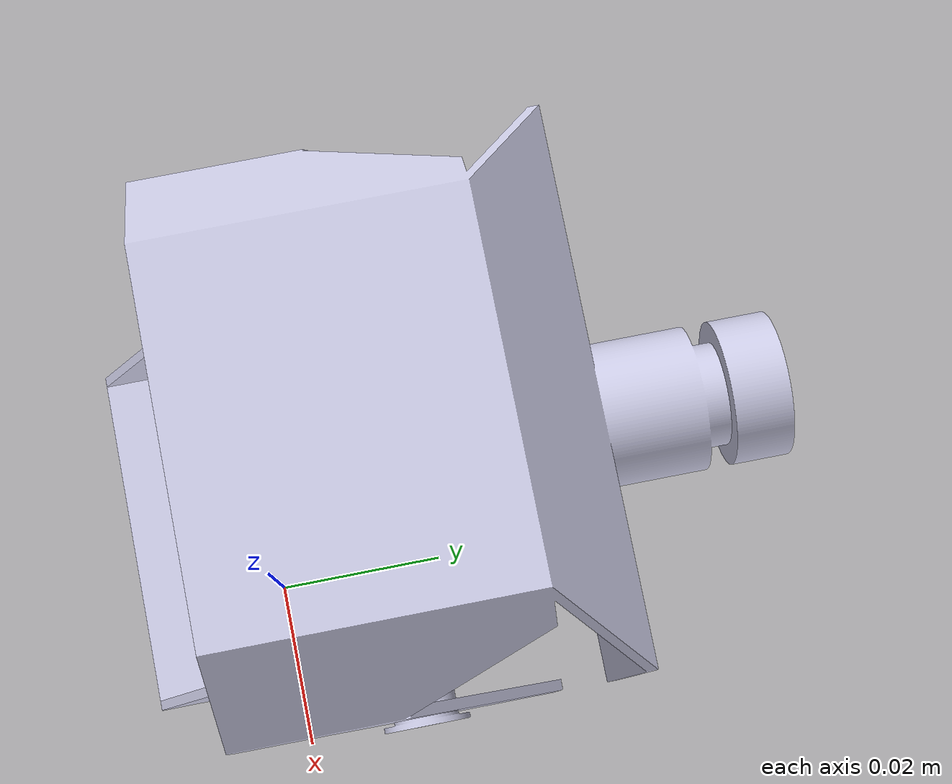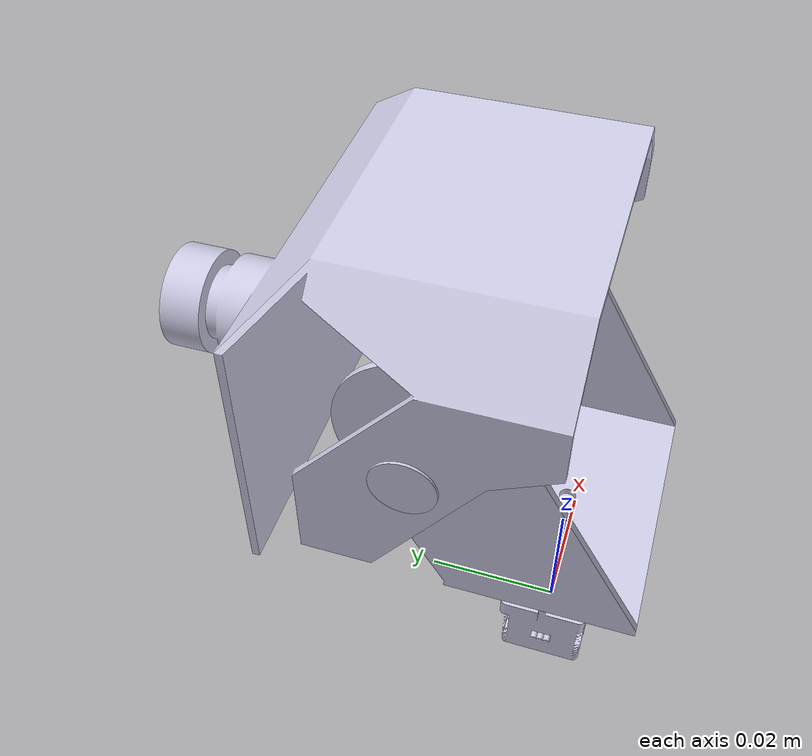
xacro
<?xml version="1.0" ?>
<robot name="Robot">
  <!--Generated by CROSS, a ROS Workbench for FreeCAD (https://github.com/galou/freecad.cross)-->
  <link name="base_link">
    <inertial>
      <mass value="0.1"/>
      <origin xyz="0.0 0.0 0.0" rpy="0.0 -0.0 0.0"/>
      <inertia ixx="0.01" ixy="0.0" ixz="0.0" iyy="0.01" iyz="0.0" izz="0.0"/>
    </inertial>
  </link>
  <link name="servo">
    <visual>
      <!--servo002-->
      <origin xyz="-0.0235 0.0119 0.0176" rpy="0.0 -0.0 0.0"/>
      <geometry>
        <mesh filename="package://yahboom_camera_controller/meshes/Camera_servo002.dae"/>
      </geometry>
    </visual>
    <collision>
      <!--servo002_bbox-->
      <origin xyz="0.00016 -0.00035 0.014855" rpy="0.0 -0.0 0.0"/>
      <geometry>
        <box size="0.03210000000000001 0.012400000000002187 0.02995"/>
      </geometry>
    </collision>
    <inertial>
      <mass value="0.009000000000000001"/>
      <origin xyz="0.0 0.0 0.0" rpy="0.0 -0.0 0.0"/>
      <inertia ixx="0.02" ixy="0.0" ixz="0.0" iyy="0.01" iyz="0.0" izz="0.02"/>
    </inertial>
  </link>
  <link name="servo_mount">
    <visual>
      <!--servo_mount001-->
      <origin xyz="-0.0185 0.01191 -0.0125" rpy="0.0 -0.0 0.0"/>
      <geometry>
        <mesh filename="package://yahboom_camera_controller/meshes/Camera_servo_mount001.dae"/>
      </geometry>
    </visual>
    <collision>
      <!--servo_mount001_bbox-->
      <origin xyz="1e-05 -0.00035 -0.00142" rpy="0.0 -0.0 0.0"/>
      <geometry>
        <box size="0.0320728250575205 0.0069000000000000025 0.0038000000000000026"/>
      </geometry>
    </collision>
    <inertial>
      <mass value="0.001"/>
      <origin xyz="0.0 0.0 0.0" rpy="0.0 -0.0 0.0"/>
      <inertia ixx="0.009999999999999787" ixy="0.0" ixz="0.0" iyy="0.01" iyz="0.0" izz="0.01"/>
    </inertial>
  </link>
  <link name="bottom">
    <visual>
      <!--bottom_part/Body001.-->
      <origin xyz="-0.0185 0.01215 -0.01252" rpy="0.0 -0.0 0.0"/>
      <geometry>
        <mesh filename="package://yahboom_camera_controller/meshes/Camera_bottom.dae"/>
      </geometry>
    </visual>
    <collision>
      <!--bottom_part/Body001.-->
      <origin xyz="-0.0185 0.01215 -0.01252" rpy="0.0 -0.0 0.0"/>
      <geometry>
        <mesh filename="package://yahboom_camera_controller/meshes/Camera_bottom.dae"/>
      </geometry>
    </collision>
    <inertial>
      <mass value="0.001"/>
      <origin xyz="0.0 0.0 0.0" rpy="0.0 -0.0 0.0"/>
      <inertia ixx="0.02" ixy="0.0" ixz="0.0" iyy="0.02" iyz="0.0" izz="0.02"/>
    </inertial>
  </link>
  <link name="connecting_rod">
    <visual>
      <!--Connecting rod001/Body004.-->
      <origin xyz="-0.04088 -0.00305 0.0185" rpy="-0.0 1.5707963267948966 0.0"/>
      <geometry>
        <mesh filename="package://yahboom_camera_controller/meshes/Camera_Connecting_rod.dae"/>
      </geometry>
    </visual>
    <collision>
      <!--Connecting rod001.Body004_bbox-->
      <origin xyz="0.00012 -0.000108672 -0.00025" rpy="-0.0 1.5707963267948966 0.0"/>
      <geometry>
        <box size="0.05169999999999999 0.008000000000000004 0.007956175162946237"/>
      </geometry>
    </collision>
    <inertial>
      <mass value="0.001"/>
      <origin xyz="0.0 0.0 0.0" rpy="0.0 -0.0 0.0"/>
      <inertia ixx="0.1" ixy="0.0" ixz="0.0" iyy="0.1" iyz="0.0" izz="0.1"/>
    </inertial>
  </link>
  <link name="top_part">
    <visual>
      <!--Top Part/Body003.-->
      <origin xyz="-0.01925 -0.00305 -0.04112" rpy="0.0 -0.0 0.0"/>
      <geometry>
        <mesh filename="package://yahboom_camera_controller/meshes/Camera_top.dae"/>
      </geometry>
    </visual>
    <collision>
      <!--Top Part/Body003.-->
      <origin xyz="-0.01925 -0.00305 -0.04112" rpy="0.0 -0.0 0.0"/>
      <geometry>
        <mesh filename="package://yahboom_camera_controller/meshes/Camera_top.dae"/>
      </geometry>
    </collision>
    <inertial>
      <mass value="0.01"/>
      <origin xyz="0.0 0.0 0.0" rpy="0.0 -0.0 0.0"/>
      <inertia ixx="0.1" ixy="0.0" ixz="0.0" iyy="0.1" iyz="0.0" izz="0.1"/>
    </inertial>
  </link>
  <link name="camera_lens">
    <visual>
      <!--Lens-->
      <origin xyz="-0.01925 -0.0381 -0.0371" rpy="0.0 -0.0 0.0"/>
      <geometry>
        <mesh filename="package://yahboom_camera_controller/meshes/Camera_Lens.dae"/>
      </geometry>
    </visual>
    <collision>
      <!--Lens_bbox-->
      <origin xyz="-0.00025 0.00395 -9.66852e-05" rpy="0.0 -0.0 0.0"/>
      <geometry>
        <box size="0.009996684675143133 0.00010000000000003695 0.009993370449424156"/>
      </geometry>
    </collision>
    <inertial>
      <mass value="0.001"/>
      <origin xyz="0.0 0.0 0.0" rpy="0.0 -0.0 0.0"/>
      <inertia ixx="0.01" ixy="0.0" ixz="0.0" iyy="0.01" iyz="0.0" izz="0.01"/>
    </inertial>
  </link>
  <joint name="base_link_servo_joint" type="fixed">
    <parent link="base_link"/>
    <child link="servo"/>
    <origin xyz="0.0 0.0 0.0" rpy="0.0 -0.0 0.0"/>
  </joint>
  <joint name="servo_to_mount" type="revolute">
    <parent link="servo"/>
    <child link="servo_mount"/>
    <origin xyz="-0.005 0.0 0.03055" rpy="0.0 -0.0 0.0"/>
    <axis xyz="0 0 1"/>
    <limit lower="-1.5707963267948966" upper="1.5707963267948966" velocity="0.0" effort="0.0"/>
  </joint>
  <joint name="mount_to_bottom" type="fixed">
    <parent link="servo_mount"/>
    <child link="bottom"/>
    <origin xyz="0.0 0.0 0.0" rpy="0.0 -0.0 0.0"/>
  </joint>
  <joint name="bottom_to_connecting_rod" type="revolute">
    <parent link="bottom"/>
    <child link="connecting_rod"/>
    <origin xyz="0.0 0.0152 0.0286" rpy="-0.0 1.5707963267948966 0.0"/>
    <axis xyz="0 0 1"/>
    <limit lower="-1.5707963267948966" upper="1.5707963267948966" velocity="0.0" effort="0.0"/>
  </joint>
  <joint name="connecting_rod_top" type="fixed">
    <parent link="connecting_rod"/>
    <child link="top_part"/>
    <origin xyz="0.0 0.0 0.0" rpy="-0.0 -1.5707963267948961 0.0"/>
  </joint>
  <joint name="top_to_camera" type="fixed">
    <parent link="top_part"/>
    <child link="camera_lens"/>
    <origin xyz="0.0 0.035 -0.004" rpy="0.0 -0.0 0.0"/>
  </joint>
</robot>
